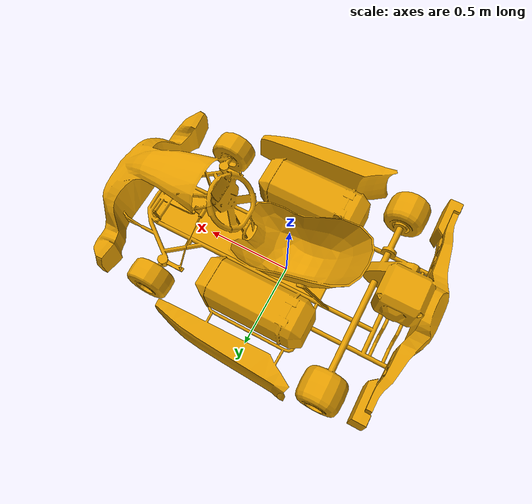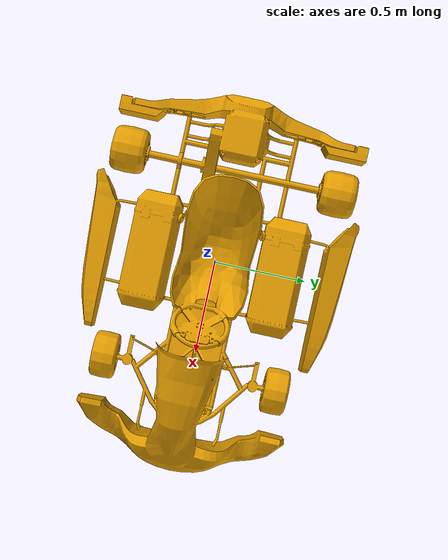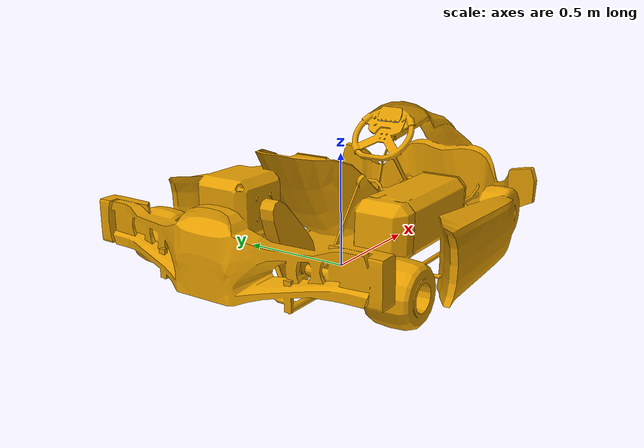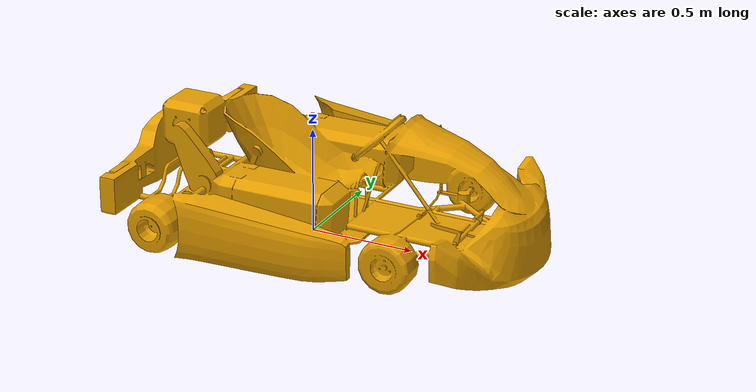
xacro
<?xml version="1.0"?>
<robot name="vehicle" xmlns:xacro="http://ros.org/wiki/xacro">

  <!-- load parameter -->
  <xacro:property name="vehicle_info" value="${load_yaml('$(find racing_kart_description)/config/vehicle_info.param.yaml')}"/>

  <!-- vehicle body -->
  <link name="base_link">
    <visual>
      <origin xyz="0 0 0" rpy="0 0 1.57"/>
      <geometry>
        <mesh filename="package://racing_kart_description/mesh/kart.dae" scale="1 1 1"/>
      </geometry>
    </visual>
  </link>

</robot>
